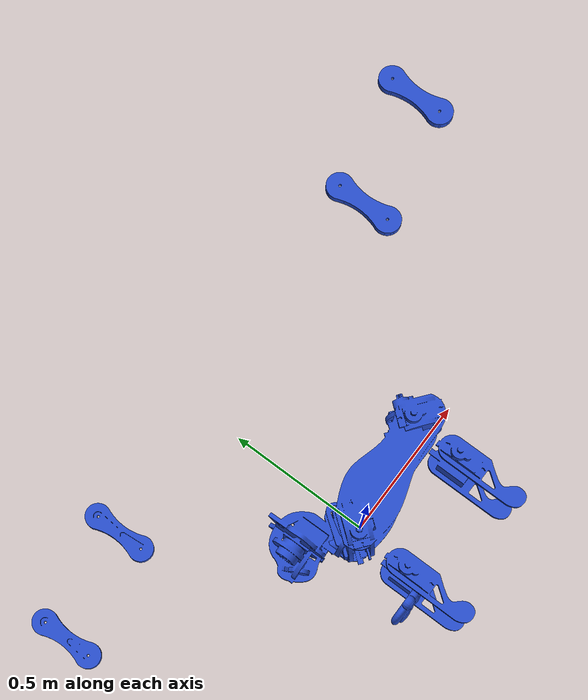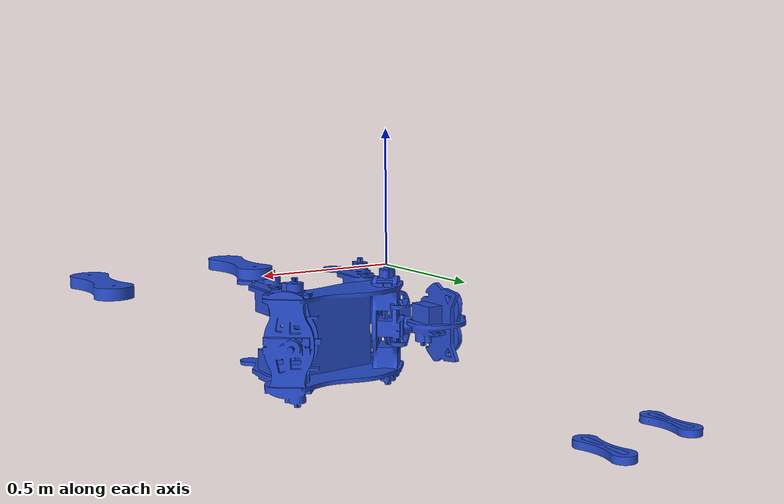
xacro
<?xml version="1.0"?>

<robot name="billi" xmlns:xacro="http://www.ros.org/wiki/xacro">

<!-- billi body -->
<xacro:include filename="$(find billi_sim)/models/urdf/body.xacro"/>

<!-- billi leg -->
<xacro:include filename="$(find billi_sim)/models/urdf/leg1.xacro"/>
<xacro:include filename="$(find billi_sim)/models/urdf/leg2.xacro"/>
<xacro:include filename="$(find billi_sim)/models/urdf/leg3.xacro"/>
<xacro:include filename="$(find billi_sim)/models/urdf/leg4.xacro"/>
<xacro:include filename="$(find billi_sim)/models/urdf/leg-lower4.xacro"/>
<xacro:include filename="$(find billi_sim)/models/urdf/leg-lower2.xacro"/>
<xacro:include filename="$(find billi_sim)/models/urdf/leg-lower1.xacro"/>
<xacro:include filename="$(find billi_sim)/models/urdf/leg-lower3.xacro"/>
<xacro:include filename="$(find billi_sim)/models/urdf/paw.xacro"/>

<!-- billi head -->
<xacro:include filename="$(find billi_sim)/models/urdf/head.xacro"/>

<!-- _____________________________________________________________HEAD AND BODY JOINT_________________________________________________ -->
<!--head_body -->
    		<joint name="head_body" type="revolute">
			<origin xyz="0.08 -0.06 -0.22" rpy="0 0 0"/>
			<parent link="body"/>
			<child  link="head"/>
			<axis xyz="0 0 1"/>
			<limit effort="10.0" velocity="1.0"
          				lower="-0.08"
		  			upper="0.08"/>
		</joint>

		<gazebo reference="head_body">
			<provideFeedback>true</provideFeedback>
			<disableFixedJointLumping>true</disableFixedJointLumping>
		</gazebo>

<!-- _____________________________________________________________RIGHT HAND BOTH JOINTS_________________________________________________ -->
<!-- right_hand-->
    		<joint name="right_hand" type="revolute">
			<origin xyz="0 0 0" rpy="0 0 0"/>
			<parent link="body"/>
			<child  link="leg1"/>
			<axis xyz="0 0 1"/>
			<limit effort="10.0" velocity="1.0"
          					lower="-1.1"
		 				 upper="1.1"/>
		</joint>

		<gazebo reference="right_hand">
			<provideFeedback>true</provideFeedback>
			<disableFixedJointLumping>true</disableFixedJointLumping>
		</gazebo>

<!--lower_upper1 -->
		<joint name="lower_upper1" type="revolute">
			<origin xyz="0.0 -0.1964 0.0" rpy="0 0 0"/>
			<parent link="leg1"/>
			<child  link="leg-lower1"/>
			<axis xyz="0 0 1"/>
			<limit effort="10.0" velocity="1.0"
          					lower="-1.1"
		  				upper="1.1"/>
		</joint>

		<gazebo reference="lower_upper1">
			<provideFeedback>true</provideFeedback>
			<disableFixedJointLumping>true</disableFixedJointLumping>
		</gazebo>

<!--lower-feet -->
    		<joint name="leg1_feet" type="fixed">
			<origin xyz="0.11 -0.06 -0.30" rpy="0 1.57 -1.57"/>
			<parent link="leg-lower1"/>
			<child  link="paw"/>
			<axis xyz="0 0 1"/>
		</joint>

		<gazebo reference="leg1_feet">
			<provideFeedback>true</provideFeedback>
			<disableFixedJointLumping>true</disableFixedJointLumping>
		</gazebo>

<!-- _____________________________________________________________LEFT HAND BOTH JOINTS_________________________________________________ -->

<!--left_hand -->
   		<joint name="left_hand" type="revolute">
			<origin xyz="0 0 -0.46" rpy="0 0 0"/>
			<parent link="body"/>
			<child  link="leg4"/>
			<axis xyz="0 0 1"/>
			<limit effort="10.0" velocity="1.0"
          				lower="-1.1"
		 			upper="1.1"/>
		</joint>
		<gazebo reference="left_hand">
			<provideFeedback>true</provideFeedback>
			<disableFixedJointLumping>true</disableFixedJointLumping>
		</gazebo>

<!-- lower_upper4-->
		<joint name="lower_upper4" type="revolute">
			<origin xyz="0.0 -0.19641 0.0" rpy="0 0 0"/>
			<parent link="leg4"/>
			<child  link="leg-lower4"/>
			<axis xyz="0 0 1"/>
			<limit effort="10.0" velocity="1.0"
          					lower="-1.1"
		 				upper="1.1"/>
		</joint>

		<gazebo reference="lower_upper4">
			<provideFeedback>true</provideFeedback>
			<disableFixedJointLumping>true</disableFixedJointLumping>
		</gazebo>

<!-- _____________________________________________________________RIGHT LEG BOTH JOINTS_________________________________________________ -->

<!-- right_leg-->
		<joint name="right_leg" type="revolute">
			<origin xyz=".415 .085 0" rpy="0 0 0"/>
			<parent link="body"/>
			<child  link="leg2"/>
			<axis xyz="0 0 1"/>
			<limit effort="10.0" velocity="1.0"
          					lower="-1.1"
		 				 upper="1.1"/>
		</joint>
		<gazebo reference="right_leg">
			<provideFeedback>true</provideFeedback>
			<disableFixedJointLumping>true</disableFixedJointLumping>
		</gazebo>

<!-- lower_upper2-->
		<joint name="lower_upper2" type="revolute">
			<origin xyz="0.0 -0.19641 0.0" rpy="0 0 0"/>
			<parent link="leg2"/>
			<child  link="leg-lower2"/>
			<axis xyz="0 0 1"/>
			<limit effort="10.0" velocity="1.0"
         					 lower="-1.1"
		 				 upper="1.1"/>
		</joint>

		<gazebo reference="lower_upper2">
				<provideFeedback>true</provideFeedback>
				<disableFixedJointLumping>true</disableFixedJointLumping>
		</gazebo>

<!-- _____________________________________________________________LEFT LEG BOTH JOINTS_________________________________________________ -->

<!--left_leg -->
    		<joint name="left_leg" type="revolute">
			<origin xyz="0.415 0.085 -0.46" rpy="0 0 0"/>
			<parent link="body"/>
			<child  link="leg3"/>
			<axis xyz="0 0 1"/>
			<limit effort="10.0" velocity="1.0"
          					lower="-1.1"
		 				 upper="1.1"/>
		</joint>

		<gazebo reference="left_leg">
			<provideFeedback>true</provideFeedback>
			<disableFixedJointLumping>true</disableFixedJointLumping>
		</gazebo>

<!-- lower_upper3-->
		<joint name="lower_upper3" type="revolute">
			<origin xyz="0.0 -0.18641 0.0" rpy="0 0 0"/>
			<parent link="leg3"/>
			<child  link="leg-lower3"/>
			<axis xyz="0 0 1"/>
			<limit effort="10.0" velocity="1.0"
          					lower="-1.1"
		 				upper="1.1"/>
		</joint>

		<gazebo reference="lower_upper3">
			<provideFeedback>true</provideFeedback>
			<disableFixedJointLumping>true</disableFixedJointLumping>
		</gazebo>

<!--___________________________________________________ Adding transmissions_____________________________________________________________-->
<transmission name="head">
    <type>transmission_interface/SimpleTransmission</type>
    <joint name="head_body">
      <hardwareInterface>hardware_interface/EffortJointInterface</hardwareInterface>
    </joint>
    <actuator name="motor_head">
      <hardwareInterface>EffortJointInterface</hardwareInterface>
      <mechanicalReduction>1</mechanicalReduction>
    </actuator>
</transmission>

<transmission name="lu1">
    <type>transmission_interface/SimpleTransmission</type>
    <joint name="right_hand">
      <hardwareInterface>hardware_interface/EffortJointInterface</hardwareInterface>
    </joint>
    <actuator name="motor1">
      <hardwareInterface>EffortJointInterface</hardwareInterface>
      <mechanicalReduction>1</mechanicalReduction>
    </actuator>
  </transmission>
<transmission name="lb1">
    <type>transmission_interface/SimpleTransmission</type>
    <joint name="lower_upper1">
      <hardwareInterface>hardware_interface/EffortJointInterface</hardwareInterface>
    </joint>
    <actuator name="motor2">
      <hardwareInterface>EffortJointInterface</hardwareInterface>
      <mechanicalReduction>1</mechanicalReduction>
    </actuator>
</transmission>

<transmission name="lu2">
    <type>transmission_interface/SimpleTransmission</type>
    <joint name="right_leg">
      <hardwareInterface>hardware_interface/EffortJointInterface</hardwareInterface>
    </joint>
    <actuator name="motor3">
      <hardwareInterface>EffortJointInterface</hardwareInterface>
      <mechanicalReduction>1</mechanicalReduction>
    </actuator>
  </transmission>
<transmission name="lb2">
    <type>transmission_interface/SimpleTransmission</type>
    <joint name="lower_upper2">
      <hardwareInterface>hardware_interface/EffortJointInterface</hardwareInterface>
    </joint>
    <actuator name="motor4">
      <hardwareInterface>EffortJointInterface</hardwareInterface>
      <mechanicalReduction>1</mechanicalReduction>
    </actuator>
</transmission>

<transmission name="lu3">
    <type>transmission_interface/SimpleTransmission</type>
    <joint name="left_leg">
      <hardwareInterface>hardware_interface/EffortJointInterface</hardwareInterface>
    </joint>
    <actuator name="motor5">
      <hardwareInterface>EffortJointInterface</hardwareInterface>
      <mechanicalReduction>1</mechanicalReduction>
    </actuator>
  </transmission>
<transmission name="lb3">
    <type>transmission_interface/SimpleTransmission</type>
    <joint name="lower_upper3">
      <hardwareInterface>hardware_interface/EffortJointInterface</hardwareInterface>
    </joint>
    <actuator name="motor6">
      <hardwareInterface>EffortJointInterface</hardwareInterface>
      <mechanicalReduction>1</mechanicalReduction>
    </actuator>
  </transmission>
<transmission name="lu4">
    <type>transmission_interface/SimpleTransmission</type>
    <joint name="left_hand">
      <hardwareInterface>hardware_interface/EffortJointInterface</hardwareInterface>
    </joint>
    <actuator name="motor7">
      <hardwareInterface>EffortJointInterface</hardwareInterface>
      <mechanicalReduction>1</mechanicalReduction>
    </actuator>
  </transmission>
<transmission name="lb4">
    <type>transmission_interface/SimpleTransmission</type>
    <joint name="lower_upper4">
      <hardwareInterface>hardware_interface/EffortJointInterface</hardwareInterface>
    </joint>
    <actuator name="motor8">
      <hardwareInterface>EffortJointInterface</hardwareInterface>
      <mechanicalReduction>1</mechanicalReduction>
    </actuator>
</transmission>

<gazebo>
  <plugin name="gazebo_ros_control" filename="libgazebo_ros_control.so">
    <robotNamespace>/billi/default_controller</robotNamespace>
    <robotSimType>gazebo_ros_control/DefaultRobotHWSim</robotSimType>
  </plugin>
</gazebo>

</robot>

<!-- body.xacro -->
<robot name="billi" xmlns:xacro="http://www.ros.org/wiki/xacro">

<!--BODY LINK -->
<link name="body">
	<visual>
		<origin rpy="0 0 0" xyz="0 0 0"/>
      		<geometry>
        		<mesh filename="package://billi_sim/models/meshes/body.stl" scale ="5 5 5"/>
      		</geometry>
      		<material name="blue"/>
    	</visual>
    	<collision>
		<origin rpy="0 0 0" xyz="0 0 0"/>
      		<geometry>
        		<mesh filename="package://billi_sim/models/meshes/body.stl" scale ="5 5 5"/>
      		</geometry>
    	</collision>
	<inertial>
		  <mass value="1.5"/>
		  <origin rpy="0 0 0" xyz="0 0 0.1"/>
		  <inertia ixx="0.192" ixy="-0.052" ixz="0" iyy="0.595" iyz="0" izz="0.459"/>
	</inertial>
</link>
<gazebo reference="body">
        <kp>1000.0</kp>
        <kd>1000.0</kd>
        <mu1>10.0</mu1>
        <mu2>10.0</mu2>
        <material>Gazebo/blue</material>
    </gazebo>

</robot>

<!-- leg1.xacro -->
<robot name="billi" xmlns:xacro="http://www.ros.org/wiki/xacro">

<!--RIGHT HAND LINK -->
<link name="leg1">
    	<visual>
    		<origin rpy="0 0 0" xyz="0 0 0"/>
     	 	<geometry>
        		<mesh filename="package://billi_sim/models/meshes/leg-upper.stl" scale ="5 5 5"/>
      		</geometry>
      		<material name="blue"/>
    	</visual>
   	<collision>
		<origin rpy="0 0 0" xyz="0 0 0"/>
      		<geometry>
        		<mesh filename="package://billi_sim/models/meshes/leg-upper.stl" scale ="5 5 5"/>
      		</geometry>
    	</collision>
	<inertial>
		  <mass value="1.0"/>
		  <origin rpy="0 0 0" xyz="0 0 0.1"/>
		  <inertia ixx="0.13157" ixy="0" ixz="0" iyy="0.01122" iyz="0" izz="0.14025"/>
	</inertial>
</link>
<gazebo reference="leg1">
        <kp>1000.0</kp>
        <kd>1000.0</kd>
        <mu1>10.0</mu1>
        <mu2>10.0</mu2>
        <material>Gazebo/blue</material>
    </gazebo>

</robot>

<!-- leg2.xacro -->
<robot name="billi" xmlns:xacro="http://www.ros.org/wiki/xacro">

<!--RIGHT LEG LINK -->
<link name="leg2">
    	<visual>
		<origin rpy="0 0 0" xyz="0 0 0"/>
      		<geometry>
        		<mesh filename="package://billi_sim/models/meshes/leg-upper.stl" scale ="5 5 5"/>
     	 	</geometry>
      		<material name="blue"/>
    	</visual>
    	<collision>
		<origin rpy="0 0 0" xyz="0 0 0"/>
      		<geometry>
        		<mesh filename="package://billi_sim/models/meshes/leg-upper.stl" scale ="5 5 5"/>
      		</geometry>
    	</collision>
	<inertial>
		  <mass value="1.0"/>
		  <origin rpy="0 0 0" xyz="0 0 0.1"/>
		  <inertia ixx="0.13157" ixy="0" ixz="0" iyy="0.01122" iyz="0" izz="0.14025"/>
	</inertial>
</link>
<gazebo reference="leg2">
        <kp>1000.0</kp>
        <kd>1000.0</kd>
        <mu1>10.0</mu1>
        <mu2>10.0</mu2>
        <material>Gazebo/blue</material>
    </gazebo>
</robot>

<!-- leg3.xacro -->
<robot name="billi" xmlns:xacro="http://www.ros.org/wiki/xacro">

<!--LEFT LEG LINK -->
<link name="leg3">
    	<visual>
		<origin rpy="0 3.14 0" xyz="0 0 0"/>
     		<geometry>
       			<mesh filename="package://billi_sim/models/meshes/leg-upper.stl" scale ="5 5 5"/>
      		</geometry>
     		<material name="blue"/>
    	</visual>
    	<collision>
		<origin rpy="0 3.14 0" xyz="0 0 0"/>
      		<geometry>
        		<mesh filename="package://billi_sim/models/meshes/leg-upper.stl" scale ="5 5 5"/>
      		</geometry>
    	</collision>
	<inertial>
		  <mass value="1.0"/>
		  <origin rpy="0 0 0" xyz="0 0 0.1"/>
		  <inertia ixx="0.13157" ixy="0" ixz="0" iyy="0.01122" iyz="0" izz="0.14025"/>
	</inertial>
</link>
<gazebo reference="leg3">
        <kp>1000.0</kp>
        <kd>1000.0</kd>
        <mu1>10.0</mu1>
        <mu2>10.0</mu2>
        <material>Gazebo/blue</material>
    </gazebo>
</robot>

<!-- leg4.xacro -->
<robot name="billi" xmlns:xacro="http://www.ros.org/wiki/xacro">

<!--LEFT HAND LINK -->
<link name="leg4">
    	<visual>
		<origin rpy="0 3.14 0" xyz="0 0 0"/>
      		<geometry>
        		<mesh filename="package://billi_sim/models/meshes/leg-upper.stl" scale ="5 5 5"/>
      		</geometry>
      		<material name="blue"/>
    	</visual>
    	<collision>
		<origin rpy="0 3.14 0" xyz="0 0 0"/>
      		<geometry>
        		<mesh filename="package://billi_sim/models/meshes/leg-upper.stl" scale ="5 5 5"/>
      		</geometry>
    	</collision>
	<inertial>
		  <mass value="1.0"/>
		  <origin rpy="0 0 0" xyz="0 0 0.1"/>
		  <inertia ixx="0.13157" ixy="0" ixz="0" iyy="0.01122" iyz="0" izz="0.14025"/>
	</inertial>
</link>
<gazebo reference="leg4">
        <kp>1000.0</kp>
        <kd>1000.0</kd>
        <mu1>10.0</mu1>
        <mu2>10.0</mu2>
        <material>Gazebo/blue</material>
    </gazebo>
</robot>

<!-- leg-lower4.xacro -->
<robot name="billi" xmlns:xacro="http://www.ros.org/wiki/xacro">

<!--LEFT LOWER HAND LINK -->
<link name="leg-lower4">
    	<visual>
    		<origin rpy="0 3.14 0" xyz="0 0 0"/>
      		<geometry>
        		<mesh filename="package://billi_sim/models/meshes/leg2-lower.stl" scale ="5 5 5"/>
     		</geometry>
      		<material name="blue"/>
    	</visual>
    	<collision>
		<origin rpy="0 3.14 0" xyz="0 0 0"/>
      		<geometry>
        		<mesh filename="package://billi_sim/models/meshes/leg2-lower.stl" scale ="5 5 5"/>
      		</geometry>
    	</collision>
	<inertial>
		  <mass value="1.0"/>
		  <origin rpy="0 0 3.14" xyz="0 0 0.1"/>
		  <inertia ixx="0.0395416666667" ixy="0" ixz="0" iyy="0.106208333333" iyz="0" izz="0.106208333333"/>
	</inertial>
</link>
<gazebo reference="leg-lower4">
        <kp>1000.0</kp>
        <kd>1000.0</kd>
        <mu1>10.0</mu1>
        <mu2>10.0</mu2>
        <material>Gazebo/blue</material>
    </gazebo>
</robot>

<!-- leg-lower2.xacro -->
<robot name="billi" xmlns:xacro="http://www.ros.org/wiki/xacro">

<!--RIGHT LOWER LEG LINK -->
<link name="leg-lower2">
    	<visual>
    		<origin rpy="0 0 0" xyz="0 0 0"/>
      		<geometry>
        		<mesh filename="package://billi_sim/models/meshes/leg1-lower.stl" scale ="5 5 5"/>
      		</geometry>
      		<material name="blue"/>
    	</visual>
    	<collision>
		<origin rpy="0 0 0" xyz="0 0 0"/>
      		<geometry>
        		<mesh filename="package://billi_sim/models/meshes/leg1-lower.stl" scale ="5 5 5"/>
      		</geometry>
    	</collision>
	<inertial>
		  <mass value="1.0"/>
		  <origin rpy="0 0 0" xyz="0 0 0.1"/>
		  <inertia ixx="0.0395416666667" ixy="0" ixz="0" iyy="0.106208333333" iyz="0" izz="0.106208333333"/>
	</inertial>
</link>
<gazebo reference="leg-lower2">
        <kp>1000.0</kp>
        <kd>1000.0</kd>
        <mu1>10.0</mu1>
        <mu2>10.0</mu2>
        <material>Gazebo/blue</material>
    </gazebo>
</robot>

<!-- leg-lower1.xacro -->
<robot name="billi" xmlns:xacro="http://www.ros.org/wiki/xacro">

<!--RIGHT LOWER HAND LINK -->
<link name="leg-lower1">
    	<visual>
    		<origin rpy="0 0 0" xyz="0 0 0"/>
      		<geometry>
        		<mesh filename="package://billi_sim/models/meshes/leg1-lower.stl" scale ="5 5 5"/>
      		</geometry>
      		<material name="blue"/>
    	</visual>
    	<collision>
		<origin rpy="0 0 0" xyz="0 0 0"/>
     		<geometry>
        		<mesh filename="package://billi_sim/models/meshes/leg1-lower.stl" scale ="5 5 5"/>
      		</geometry>
    	</collision>
	<inertial>
		  <mass value="1.0"/>
		  <origin rpy="0 0 3.14" xyz="0 0 0.1"/>
		  <inertia ixx="0.0395416666667" ixy="0" ixz="0" iyy="0.106208333333" iyz="0" izz="0.106208333333"/>
	</inertial>
</link>
<gazebo reference="leg-lower1">
        <kp>1000.0</kp>
        <kd>1000.0</kd>
        <mu1>10.0</mu1>
        <mu2>10.0</mu2>
        <material>Gazebo/blue</material>
    </gazebo>
</robot>

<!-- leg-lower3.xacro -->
<robot name="billi" xmlns:xacro="http://www.ros.org/wiki/xacro">

<!--LEFT LOWER LEG LINK -->
<link name="leg-lower3">
    	<visual>
    		<origin rpy="0 3.14 0" xyz="0 0 0"/>
      		<geometry>
        		<mesh filename="package://billi_sim/models/meshes/leg2-lower.stl" scale ="5 5 5"/>
      		</geometry>
      		<material name="blue"/>
    	</visual>
    	<collision>
		<origin rpy="0 3.14 0" xyz="0 0 0"/>
      		<geometry>
        		<mesh filename="package://billi_sim/models/meshes/leg2-lower.stl" scale ="5 5 5"/>
     	 	</geometry>
    	</collision>
	<inertial>
		  <mass value="1.0"/>
		  <origin rpy="0 0 3.14" xyz="0 0 0.1"/>
		  <inertia ixx="0.0395416666667" ixy="0" ixz="0" iyy="0.106208333333" iyz="0" izz="0.106208333333"/>
	</inertial>
</link>
<gazebo reference="leg-lower3">
        <kp>1000.0</kp>
        <kd>1000.0</kd>
        <mu1>10.0</mu1>
        <mu2>10.0</mu2>
        <material>Gazebo/blue</material>
    </gazebo>
</robot>

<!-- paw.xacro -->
<robot name="billi" xmlns:xacro="http://www.ros.org/wiki/xacro">

<!--PAW LINK -->
<link name="paw">
	<visual>
		<origin rpy="0 0 0" xyz="0 0 0"/>
      		<geometry>
        		<mesh filename="package://billi_sim/models/meshes/paw.stl" scale ="5 5 5"/>
      		</geometry>
      		<material name="blue"/>
    	</visual>
   	<collision>
		<origin rpy="0 0 0" xyz="0 0 0"/>
      		<geometry>
        		<mesh filename="package://billi_sim/models/meshes/paw.stl" scale ="5 5 5"/>
      		</geometry>
    	</collision>
	<inertial>
		  <mass value="1.5"/>
		  <origin rpy="0 0 0" xyz="0 0 0.1"/>
		  <inertia ixx="0.0395416666667" ixy="0" ixz="0" iyy="0.106208333333" iyz="0" izz="0.106208333333"/>
	</inertial>
</link>
<gazebo reference="paw">
        <kp>1000.0</kp>
        <kd>1000.0</kd>
        <mu1>10.0</mu1>
        <mu2>10.0</mu2>
        <material>Gazebo/blue</material>
    </gazebo>

</robot>

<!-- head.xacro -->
<robot name="billi" xmlns:xacro="http://www.ros.org/wiki/xacro">

<!--HEAD LINK -->
<link name="head">
	<visual>
		<origin rpy="0 0 0.1" xyz="0 -0.11 0"/>
      		<geometry>
        		<mesh filename="package://billi_sim/models/meshes/head.stl" scale ="5 5 5"/>
      		</geometry>
      		<material name="blue"/>
    	</visual>
   	<collision>
		<origin rpy="0 0 0.1" xyz="0 -0.11 0"/>
      		<geometry>
        		<mesh filename="package://billi_sim/models/meshes/head.stl" scale ="5 5 5"/>
      		</geometry>
    	</collision>
	<inertial>
		  <mass value="1.5"/>
		  <origin rpy="0 0 0.1" xyz="0 0 0.1"/>
		  <inertia ixx="0.0395416666667" ixy="0" ixz="0" iyy="0.106208333333" iyz="0" izz="0.106208333333"/>
	</inertial>
</link>
<gazebo reference="head">
        <kp>1000.0</kp>
        <kd>1000.0</kd>
        <mu1>10.0</mu1>
        <mu2>10.0</mu2>
        <material>Gazebo/blue</material>
    </gazebo>

</robot>
